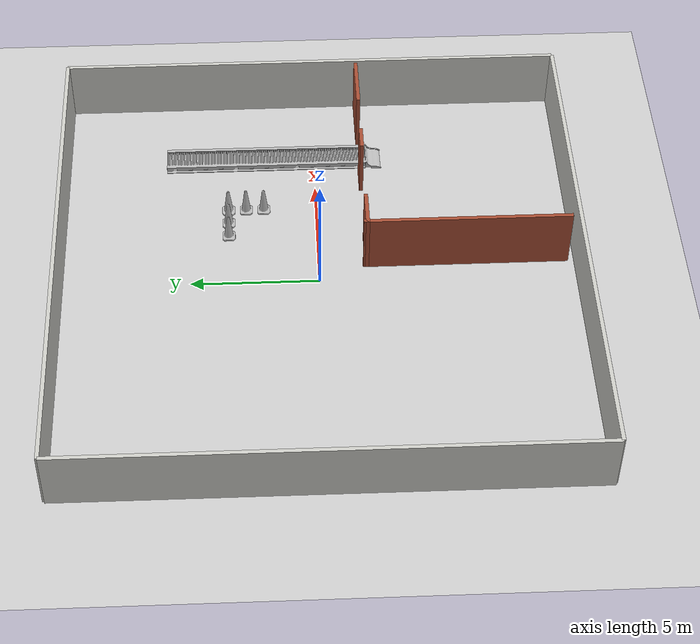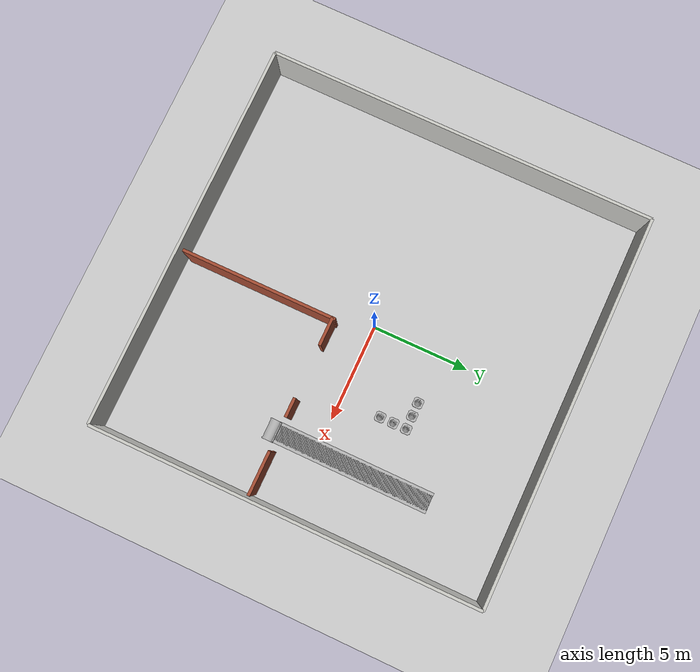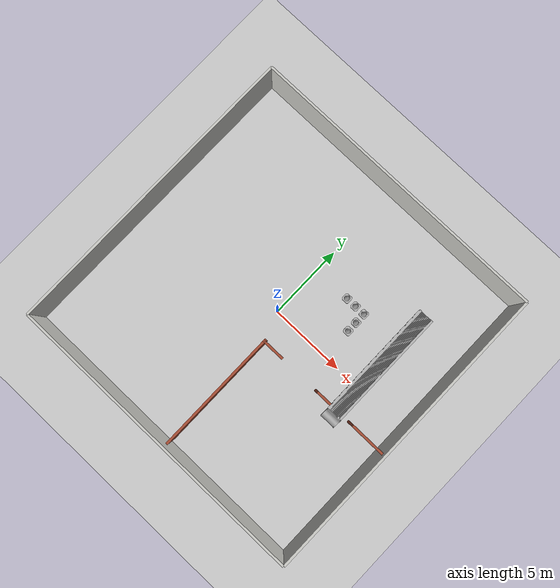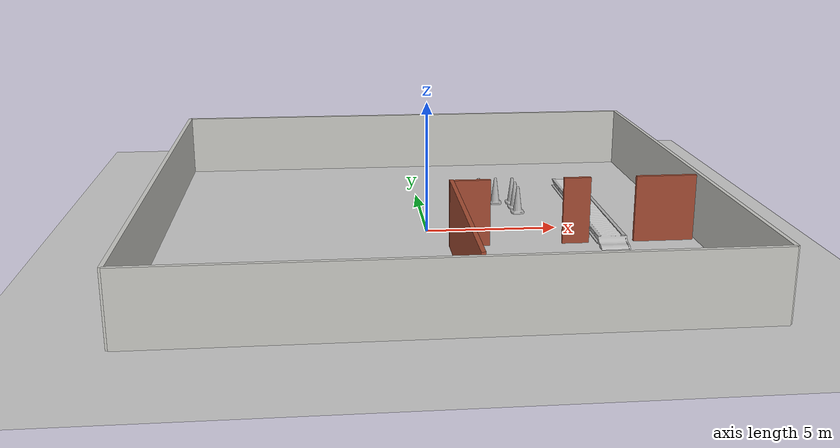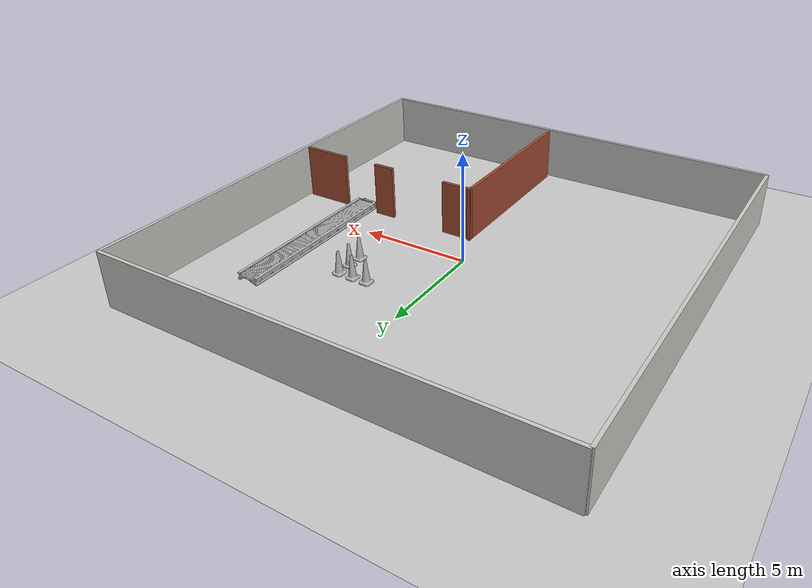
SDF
<sdf version="1.7">
 <world name="default">
  <light name="sun" type="directional">
   <pose>0 0 10 0 -0 0</pose>
   <diffuse>0.8 0.8 0.8 1</diffuse>
   <specular>0.2 0.2 0.2 1</specular>
   <attenuation>
    <range>1000</range>
    <constant>0.9</constant>
    <linear>0.01</linear>
    <quadratic>0.001</quadratic>
   </attenuation>
   <direction>-0.5 0.1 -0.9</direction>
   <spot><inner_angle>0</inner_angle><outer_angle>0</outer_angle><falloff>0</falloff></spot>
  </light>
  <model name="ground_plane">
   <static>1</static>
   <link name="link">
    <collision name="collision">
     <geometry><plane><normal>0 0 1</normal><size>100 100</size></plane></geometry>
     <surface><friction><ode><mu>100</mu><mu2>50</mu2></ode></friction></surface>
    </collision>
    <visual name="visual">
     <cast_shadows>0</cast_shadows>
     <geometry><plane><normal>0 0 1</normal><size>100 100</size></plane></geometry>
     <material>
      <script><uri>file://media/materials/scripts/gazebo.material</uri><name>Gazebo/Grey</name></script>
     </material>
    </visual>
   </link>
  </model>
  <gravity>0 0 -9.8</gravity>
  <magnetic_field>6e-06 2.3e-05 -4.2e-05</magnetic_field>
  <atmosphere type="adiabatic"/>
  <physics type="ode">
   <max_step_size>0.001</max_step_size>
   <real_time_factor>1</real_time_factor>
   <real_time_update_rate>1000</real_time_update_rate>
  </physics>
  <scene><ambient>0.4 0.4 0.4 1</ambient><background>0.7 0.7 0.7 1</background><shadows>1</shadows></scene>
  <spherical_coordinates>
   <surface_model>EARTH_WGS84</surface_model>
   <latitude_deg>0</latitude_deg>
   <longitude_deg>0</longitude_deg>
   <elevation>0</elevation>
   <heading_deg>0</heading_deg>
  </spherical_coordinates>
  <model name="shipping_container_conveyor_ariac">
   <static>1</static>
   <link name="link">
    <collision name="collision_belt_side_front">
     <pose>1.191 1.6275 0.32 0 -0 0</pose>
     <geometry><box><size>0.137 7.98 0.3</size></box></geometry>
    </collision>
    <collision name="collision_belt_side_back">
     <pose>0.268 1.6275 0.32 0 -0 0</pose>
     <geometry><box><size>0.145 7.98 0.3</size></box></geometry>
    </collision>
    <visual name="visual">
     <geometry>
      <mesh>
       <scale>1.3 0.7 1</scale>
       <uri>model://shipping_container_conveyor_ariac/meshes/ShippingContainer_Textured.obj</uri>
      </mesh>
     </geometry>
    </visual>
   </link>
   <pose>5.94716 0.254888 -0.15 0 -0 0</pose>
  </model>
  <model name="Construction Cone">
   <link name="link">
    <collision name="collision">
     <geometry>
      <mesh><scale>10 10 10</scale><uri>model://construction_cone/meshes/construction_cone.dae</uri></mesh>
     </geometry>
    </collision>
    <visual name="visual">
     <geometry>
      <mesh><scale>10 10 10</scale><uri>model://construction_cone/meshes/construction_cone.dae</uri></mesh>
     </geometry>
    </visual>
    <inertial>
     <inertia><ixx>1</ixx><ixy>0</ixy><ixz>0</ixz><iyy>1</iyy><iyz>0</iyz><izz>1</izz></inertia>
     <mass>1</mass>
    </inertial>
   </link>
   <pose>3.9 3.5 -0 0 -1e-06 0</pose>
  </model>
  <model name="Construction Cone_0">
   <link name="link">
    <collision name="collision">
     <geometry>
      <mesh><scale>10 10 10</scale><uri>model://construction_cone/meshes/construction_cone.dae</uri></mesh>
     </geometry>
    </collision>
    <visual name="visual">
     <geometry>
      <mesh><scale>10 10 10</scale><uri>model://construction_cone/meshes/construction_cone.dae</uri></mesh>
     </geometry>
    </visual>
    <inertial>
     <inertia><ixx>1</ixx><ixy>0</ixy><ixz>0</ixz><iyy>1</iyy><iyz>0</iyz><izz>1</izz></inertia>
     <mass>1</mass>
    </inertial>
   </link>
   <pose>2.5 3.5 0 -0 -0 -0</pose>
  </model>
  <model name="Construction Cone_1">
   <link name="link">
    <collision name="collision">
     <geometry>
      <mesh><scale>10 10 10</scale><uri>model://construction_cone/meshes/construction_cone.dae</uri></mesh>
     </geometry>
    </collision>
    <visual name="visual">
     <geometry>
      <mesh><scale>10 10 10</scale><uri>model://construction_cone/meshes/construction_cone.dae</uri></mesh>
     </geometry>
    </visual>
    <inertial>
     <inertia><ixx>1</ixx><ixy>0</ixy><ixz>0</ixz><iyy>1</iyy><iyz>0</iyz><izz>1</izz></inertia>
     <mass>1</mass>
    </inertial>
   </link>
   <pose>3.9 2.8 -0 0 -1e-06 0</pose>
  </model>
  <model name="Construction Cone_1_clone">
   <link name="link">
    <collision name="collision">
     <geometry>
      <mesh><scale>10 10 10</scale><uri>model://construction_cone/meshes/construction_cone.dae</uri></mesh>
     </geometry>
    </collision>
    <visual name="visual">
     <geometry>
      <mesh><scale>10 10 10</scale><uri>model://construction_cone/meshes/construction_cone.dae</uri></mesh>
     </geometry>
    </visual>
    <inertial>
     <inertia><ixx>1</ixx><ixy>0</ixy><ixz>0</ixz><iyy>1</iyy><iyz>0</iyz><izz>1</izz></inertia>
     <mass>1</mass>
    </inertial>
   </link>
   <pose>3.9 2.1 -5e-06 -4e-06 1e-06 0</pose>
  </model>
  <model name="Construction Cone_1_clone_0">
   <link name="link">
    <collision name="collision">
     <geometry>
      <mesh><scale>10 10 10</scale><uri>model://construction_cone/meshes/construction_cone.dae</uri></mesh>
     </geometry>
    </collision>
    <visual name="visual">
     <geometry>
      <mesh><scale>10 10 10</scale><uri>model://construction_cone/meshes/construction_cone.dae</uri></mesh>
     </geometry>
    </visual>
    <inertial>
     <inertia><ixx>1</ixx><ixy>0</ixy><ixz>0</ixz><iyy>1</iyy><iyz>0</iyz><izz>1</izz></inertia>
     <mass>1</mass>
    </inertial>
   </link>
   <pose>3.2 3.5 -0 0 -0 0</pose>
  </model>
  <model name="single_wall">
   <pose>-10 0 0 0 -0 1.57</pose>
   <link name="Wall_3">
    <collision name="Wall_3_Collision">
     <geometry><box><size>20 0.15 2.5</size></box></geometry>
     <pose>0 0 1.25 0 -0 0</pose>
    </collision>
    <visual name="Wall_3_Visual">
     <pose>0 0 1.25 0 -0 0</pose>
     <geometry><box><size>20 0.15 2.5</size></box></geometry>
     <material>
      <script><uri>file://media/materials/scripts/gazebo.material</uri><name>Gazebo/CeilingTiled</name></script>
      <ambient>1 1 1 1</ambient>
     </material>
     <meta><layer>0</layer></meta>
    </visual>
   </link>
   <static>1</static>
  </model>
  <model name="single_wall_clone">
   <pose>0 10 0 0 -0 0</pose>
   <link name="Wall_3">
    <collision name="Wall_3_Collision">
     <geometry><box><size>20 0.15 2.5</size></box></geometry>
     <pose>0 0 1.25 0 -0 0</pose>
    </collision>
    <visual name="Wall_3_Visual">
     <pose>0 0 1.25 0 -0 0</pose>
     <geometry><box><size>20 0.15 2.5</size></box></geometry>
     <material>
      <script><uri>file://media/materials/scripts/gazebo.material</uri><name>Gazebo/CeilingTiled</name></script>
      <ambient>1 1 1 1</ambient>
     </material>
     <meta><layer>0</layer></meta>
    </visual>
   </link>
   <static>1</static>
  </model>
  <model name="single_wall_clone_0">
   <pose>0 -10 0 0 -0 3.14</pose>
   <link name="Wall_3">
    <collision name="Wall_3_Collision">
     <geometry><box><size>20 0.15 2.5</size></box></geometry>
     <pose>0 0 1.25 0 -0 0</pose>
    </collision>
    <visual name="Wall_3_Visual">
     <pose>0 0 1.25 0 -0 0</pose>
     <geometry><box><size>20 0.15 2.5</size></box></geometry>
     <material>
      <script><uri>file://media/materials/scripts/gazebo.material</uri><name>Gazebo/CeilingTiled</name></script>
      <ambient>1 1 1 1</ambient>
     </material>
     <meta><layer>0</layer></meta>
    </visual>
   </link>
   <static>1</static>
  </model>
  <model name="single_wall_clone_1">
   <pose>10 0 0 0 0 -1.57</pose>
   <link name="Wall_3">
    <collision name="Wall_3_Collision">
     <geometry><box><size>20 0.15 2.5</size></box></geometry>
     <pose>0 0 1.25 0 -0 0</pose>
    </collision>
    <visual name="Wall_3_Visual">
     <pose>0 0 1.25 0 -0 0</pose>
     <geometry><box><size>20 0.15 2.5</size></box></geometry>
     <material>
      <script><uri>file://media/materials/scripts/gazebo.material</uri><name>Gazebo/CeilingTiled</name></script>
      <ambient>1 1 1 1</ambient>
     </material>
     <meta><layer>0</layer></meta>
    </visual>
   </link>
   <static>1</static>
  </model>
  <model name="single_wall_1">
   <pose>0.7388 -5.70207 0 0 0 -1.57</pose>
   <link name="Wall_9">
    <collision name="Wall_9_Collision">
     <geometry><box><size>8 0.15 2.5</size></box></geometry>
     <pose>0 0 1.25 0 -0 0</pose>
    </collision>
    <visual name="Wall_9_Visual">
     <pose>0 0 1.25 0 -0 0</pose>
     <geometry><box><size>8 0.15 2.5</size></box></geometry>
     <material>
      <script><uri>file://media/materials/scripts/gazebo.material</uri><name>Gazebo/Bricks</name></script>
      <ambient>1 1 1 1</ambient>
     </material>
     <meta><layer>0</layer></meta>
    </visual>
   </link>
   <static>1</static>
  </model>
  <model name="single_wall_1_clone_clone">
   <link name="Wall_9">
    <inertial>
     <inertia><ixx>0</ixx><ixy>0</ixy><ixz>0</ixz><iyy>0</iyy><iyz>0</iyz><izz>0</izz></inertia>
     <mass>0</mass>
    </inertial>
    <visual name="Wall_9_Visual">
     <pose>0 0 1.25 0 -0 0</pose>
     <geometry><box><size>1 0.15 2.5</size></box></geometry>
     <material>
      <script><uri>file://media/materials/scripts/gazebo.material</uri><name>Gazebo/Bricks</name></script>
      <ambient>1 1 1 1</ambient>
      <shader type="pixel"><normal_map>__default__</normal_map></shader>
      <diffuse>1 1 1 1</diffuse>
      <specular>0.2 0.2 0.2 1</specular>
      <emissive>0 0 0 1</emissive>
     </material>
     <meta><layer>0</layer></meta>
    </visual>
    <collision name="Wall_9_Collision">
     <pose>0 0 1.25 0 -0 0</pose>
     <geometry><box><size>1 0.15 2.5</size></box></geometry>
     <surface>
      <friction>
       <ode><mu>1</mu><mu2>1</mu2><fdir1>0 0 0</fdir1><slip1>0</slip1><slip2>0</slip2></ode>
       <torsional>
        <coefficient>1</coefficient>
        <patch_radius>0</patch_radius>
        <surface_radius>0</surface_radius>
        <use_patch_radius>1</use_patch_radius>
        <ode><slip>0</slip></ode>
       </torsional>
      </friction>
      <bounce><restitution_coefficient>0</restitution_coefficient><threshold>1e+06</threshold></bounce>
      <contact>
       <collide_without_contact>0</collide_without_contact>
       <collide_without_contact_bitmask>1</collide_without_contact_bitmask>
       <collide_bitmask>1</collide_bitmask>
       <ode>
        <soft_cfm>0</soft_cfm>
        <soft_erp>0.2</soft_erp>
        <kp>1e+13</kp>
        <kd>1</kd>
        <max_vel>0.01</max_vel>
        <min_depth>0</min_depth>
       </ode>
       <bullet>
        <split_impulse>1</split_impulse>
        <split_impulse_penetration_threshold>-0.01</split_impulse_penetration_threshold>
        <soft_cfm>0</soft_cfm>
        <soft_erp>0.2</soft_erp>
        <kp>1e+13</kp>
        <kd>1</kd>
       </bullet>
      </contact>
     </surface>
    </collision>
   </link>
   <static>1</static>
   <pose>5.36173 -1.85107 0 0 -0 3.14</pose>
  </model>
  <model name="single_wall_1_clone">
   <link name="Wall_9">
    <inertial>
     <inertia><ixx>0</ixx><ixy>0</ixy><ixz>0</ixz><iyy>0</iyy><iyz>0</iyz><izz>0</izz></inertia>
     <mass>0</mass>
    </inertial>
    <visual name="Wall_9_Visual">
     <pose>0 0 1.25 0 -0 0</pose>
     <geometry><box><size>1.5 0.15 2.5</size></box></geometry>
     <material>
      <script><uri>file://media/materials/scripts/gazebo.material</uri><name>Gazebo/Bricks</name></script>
      <ambient>1 1 1 1</ambient>
      <shader type="pixel"><normal_map>__default__</normal_map></shader>
      <diffuse>1 1 1 1</diffuse>
      <specular>0.2 0.2 0.2 1</specular>
      <emissive>0 0 0 1</emissive>
     </material>
     <meta><layer>0</layer></meta>
    </visual>
    <collision name="Wall_9_Collision">
     <pose>0 0 1.25 0 -0 0</pose>
     <geometry><box><size>1 0.15 2.5</size></box></geometry>
     <surface>
      <friction>
       <ode><mu>1</mu><mu2>1</mu2><fdir1>0 0 0</fdir1><slip1>0</slip1><slip2>0</slip2></ode>
       <torsional>
        <coefficient>1</coefficient>
        <patch_radius>0</patch_radius>
        <surface_radius>0</surface_radius>
        <use_patch_radius>1</use_patch_radius>
        <ode><slip>0</slip></ode>
       </torsional>
      </friction>
      <bounce><restitution_coefficient>0</restitution_coefficient><threshold>1e+06</threshold></bounce>
      <contact>
       <collide_without_contact>0</collide_without_contact>
       <collide_without_contact_bitmask>1</collide_without_contact_bitmask>
       <collide_bitmask>1</collide_bitmask>
       <ode>
        <soft_cfm>0</soft_cfm>
        <soft_erp>0.2</soft_erp>
        <kp>1e+13</kp>
        <kd>1</kd>
        <max_vel>0.01</max_vel>
        <min_depth>0</min_depth>
       </ode>
       <bullet>
        <split_impulse>1</split_impulse>
        <split_impulse_penetration_threshold>-0.01</split_impulse_penetration_threshold>
        <soft_cfm>0</soft_cfm>
        <soft_erp>0.2</soft_erp>
        <kp>1e+13</kp>
        <kd>1</kd>
       </bullet>
      </contact>
     </surface>
    </collision>
   </link>
   <static>1</static>
   <pose>1.40743 -1.85107 0 0 -0 3.14</pose>
  </model>
  <model name="single_wall_1_clone_clone_clone">
   <link name="Wall_9">
    <inertial>
     <inertia><ixx>0</ixx><ixy>0</ixy><ixz>0</ixz><iyy>0</iyy><iyz>0</iyz><izz>0</izz></inertia>
     <mass>0</mass>
    </inertial>
    <visual name="Wall_9_Visual">
     <pose>0 0 1.25 0 -0 0</pose>
     <geometry><box><size>2.25 0.15 2.5</size></box></geometry>
     <material>
      <script><uri>file://media/materials/scripts/gazebo.material</uri><name>Gazebo/Bricks</name></script>
      <ambient>1 1 1 1</ambient>
      <shader type="pixel"><normal_map>__default__</normal_map></shader>
      <diffuse>1 1 1 1</diffuse>
      <specular>0.2 0.2 0.2 1</specular>
      <emissive>0 0 0 1</emissive>
     </material>
     <meta><layer>0</layer></meta>
    </visual>
    <collision name="Wall_9_Collision">
     <pose>0 0 1.25 0 -0 0</pose>
     <geometry><box><size>2.25 0.15 2.5</size></box></geometry>
     <surface>
      <friction>
       <ode><mu>1</mu><mu2>1</mu2><fdir1>0 0 0</fdir1><slip1>0</slip1><slip2>0</slip2></ode>
       <torsional>
        <coefficient>1</coefficient>
        <patch_radius>0</patch_radius>
        <surface_radius>0</surface_radius>
        <use_patch_radius>1</use_patch_radius>
        <ode><slip>0</slip></ode>
       </torsional>
      </friction>
      <bounce><restitution_coefficient>0</restitution_coefficient><threshold>1e+06</threshold></bounce>
      <contact>
       <collide_without_contact>0</collide_without_contact>
       <collide_without_contact_bitmask>1</collide_without_contact_bitmask>
       <collide_bitmask>1</collide_bitmask>
       <ode>
        <soft_cfm>0</soft_cfm>
        <soft_erp>0.2</soft_erp>
        <kp>1e+13</kp>
        <kd>1</kd>
        <max_vel>0.01</max_vel>
        <min_depth>0</min_depth>
       </ode>
       <bullet>
        <split_impulse>1</split_impulse>
        <split_impulse_penetration_threshold>-0.01</split_impulse_penetration_threshold>
        <soft_cfm>0</soft_cfm>
        <soft_erp>0.2</soft_erp>
        <kp>1e+13</kp>
        <kd>1</kd>
       </bullet>
      </contact>
     </surface>
    </collision>
   </link>
   <static>1</static>
   <pose>8.68743 -1.85107 0 0 -0 3.14</pose>
  </model>
 </world>
</sdf>
